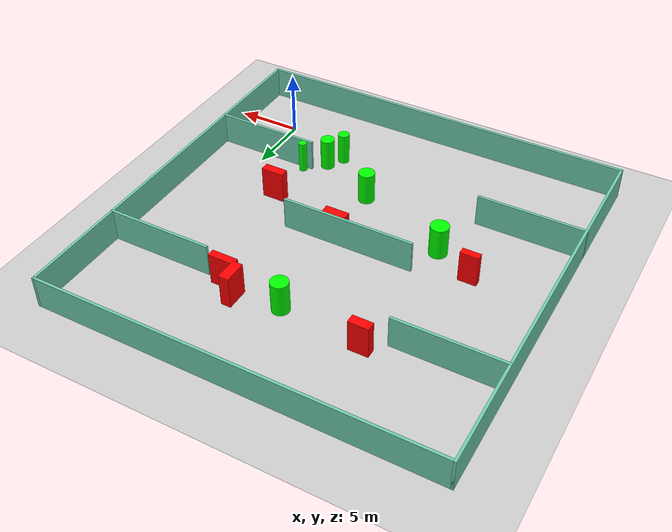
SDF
<sdf version="1.7">
 <world name="default">
  <light name="sun" type="directional">
   <pose>0 0 10 0 -0 0</pose>
   <diffuse>0.8 0.8 0.8 1</diffuse>
   <specular>0.2 0.2 0.2 1</specular>
   <attenuation>
    <range>1000</range>
    <constant>0.9</constant>
    <linear>0.01</linear>
    <quadratic>0.001</quadratic>
   </attenuation>
   <direction>-0.5 0.1 -0.9</direction>
   <spot><inner_angle>0</inner_angle><outer_angle>0</outer_angle><falloff>0</falloff></spot>
  </light>
  <model name="ground_plane">
   <static>1</static>
   <link name="link">
    <collision name="collision">
     <geometry><plane><normal>0 0 1</normal><size>100 100</size></plane></geometry>
     <surface>
      <contact><collide_bitmask>65535</collide_bitmask></contact>
      <friction><ode><mu>100</mu><mu2>50</mu2></ode></friction>
     </surface>
    </collision>
    <visual name="visual">
     <cast_shadows>0</cast_shadows>
     <geometry><plane><normal>0 0 1</normal><size>100 100</size></plane></geometry>
     <material>
      <script><uri>file://media/materials/scripts/gazebo.material</uri><name>Gazebo/Grey</name></script>
     </material>
    </visual>
   </link>
  </model>
  <gravity>0 0 -9.8</gravity>
  <magnetic_field>6e-06 2.3e-05 -4.2e-05</magnetic_field>
  <atmosphere type="adiabatic"/>
  <physics type="ode">
   <max_step_size>0.001</max_step_size>
   <real_time_factor>1</real_time_factor>
   <real_time_update_rate>1000</real_time_update_rate>
  </physics>
  <scene><ambient>0.4 0.4 0.4 1</ambient><background>0.7 0.7 0.7 1</background><shadows>1</shadows></scene>
  <spherical_coordinates>
   <surface_model>EARTH_WGS84</surface_model>
   <latitude_deg>0</latitude_deg>
   <longitude_deg>0</longitude_deg>
   <elevation>0</elevation>
   <heading_deg>0</heading_deg>
  </spherical_coordinates>
  <model name="my_base_walls">
   <link name="Wall_10">
    <collision name="Wall_10_Collision">
     <geometry><box><size>8.2 0.2 2.5</size></box></geometry>
     <pose>0 0 1.25 0 -0 0</pose>
    </collision>
    <visual name="Wall_10_Visual">
     <pose>0 0 1.25 0 -0 0</pose>
     <geometry><box><size>8.2 0.2 2.5</size></box></geometry>
     <material>
      <script><uri>file://media/materials/scripts/gazebo.material</uri><name>Gazebo/Grey</name></script>
      <ambient>0.435294 0.796078 0.67451 1</ambient>
     </material>
     <meta><layer>0</layer></meta>
    </visual>
    <pose>-11 -7 0 0 -0 0</pose>
   </link>
   <link name="Wall_12">
    <collision name="Wall_12_Collision">
     <geometry><box><size>8.2 0.2 2.5</size></box></geometry>
     <pose>0 0 1.25 0 -0 0</pose>
    </collision>
    <visual name="Wall_12_Visual">
     <pose>0 0 1.25 0 -0 0</pose>
     <geometry><box><size>8.2 0.2 2.5</size></box></geometry>
     <material>
      <script><uri>file://media/materials/scripts/gazebo.material</uri><name>Gazebo/Grey</name></script>
      <ambient>0.435294 0.796078 0.67451 1</ambient>
     </material>
     <meta><layer>0</layer></meta>
    </visual>
    <pose>-11 7 0 0 -0 0</pose>
   </link>
   <link name="Wall_14">
    <collision name="Wall_14_Collision">
     <geometry><box><size>8.2 0.2 2.5</size></box></geometry>
     <pose>0 0 1.25 0 -0 0</pose>
    </collision>
    <visual name="Wall_14_Visual">
     <pose>0 0 1.25 0 -0 0</pose>
     <geometry><box><size>8.2 0.2 2.5</size></box></geometry>
     <material>
      <script><uri>file://media/materials/scripts/gazebo.material</uri><name>Gazebo/Grey</name></script>
      <ambient>0.435294 0.796078 0.67451 1</ambient>
     </material>
     <meta><layer>0</layer></meta>
    </visual>
    <pose>11 7 0 0 -0 3.14159</pose>
   </link>
   <link name="Wall_16">
    <collision name="Wall_16_Collision">
     <geometry><box><size>10.2 0.2 2.5</size></box></geometry>
     <pose>0 0 1.25 0 -0 0</pose>
    </collision>
    <visual name="Wall_16_Visual">
     <pose>0 0 1.25 0 -0 0</pose>
     <geometry><box><size>10.2 0.2 2.5</size></box></geometry>
     <material>
      <script><uri>file://media/materials/scripts/gazebo.material</uri><name>Gazebo/Grey</name></script>
      <ambient>0.435294 0.796078 0.67451 1</ambient>
     </material>
     <meta><layer>0</layer></meta>
    </visual>
    <pose>0 0 0 0 -0 3.14159</pose>
   </link>
   <link name="Wall_2">
    <collision name="Wall_2_Collision">
     <geometry><box><size>30.2 0.2 2.5</size></box></geometry>
     <pose>0 0 1.25 0 -0 0</pose>
    </collision>
    <visual name="Wall_2_Visual">
     <pose>0 0 1.25 0 -0 0</pose>
     <geometry><box><size>30.2 0.2 2.5</size></box></geometry>
     <material>
      <script><uri>file://media/materials/scripts/gazebo.material</uri><name>Gazebo/Grey</name></script>
      <ambient>0.435294 0.796078 0.67451 1</ambient>
     </material>
     <meta><layer>0</layer></meta>
    </visual>
    <pose>0 -15 0 0 -0 3.14159</pose>
   </link>
   <link name="Wall_3">
    <collision name="Wall_3_Collision">
     <geometry><box><size>30.2 0.2 2.5</size></box></geometry>
     <pose>0 0 1.25 0 -0 0</pose>
    </collision>
    <visual name="Wall_3_Visual">
     <pose>0 0 1.25 0 -0 0</pose>
     <geometry><box><size>30.2 0.2 2.5</size></box></geometry>
     <material>
      <script><uri>file://media/materials/scripts/gazebo.material</uri><name>Gazebo/Grey</name></script>
      <ambient>0.435294 0.796078 0.67451 1</ambient>
     </material>
     <meta><layer>0</layer></meta>
    </visual>
    <pose>-15 0 0 0 -0 1.5708</pose>
   </link>
   <link name="Wall_4">
    <collision name="Wall_4_Collision">
     <geometry><box><size>30.2 0.2 2.5</size></box></geometry>
     <pose>0 0 1.25 0 -0 0</pose>
    </collision>
    <visual name="Wall_4_Visual">
     <pose>0 0 1.25 0 -0 0</pose>
     <geometry><box><size>30.2 0.2 2.5</size></box></geometry>
     <material>
      <script><uri>file://media/materials/scripts/gazebo.material</uri><name>Gazebo/Grey</name></script>
      <ambient>0.435294 0.796078 0.67451 1</ambient>
     </material>
     <meta><layer>0</layer></meta>
    </visual>
    <pose>0 15 0 0 -0 0</pose>
   </link>
   <link name="Wall_6">
    <collision name="Wall_6_Collision">
     <geometry><box><size>30.2 0.2 2.5</size></box></geometry>
     <pose>0 0 1.25 0 -0 0</pose>
    </collision>
    <visual name="Wall_6_Visual">
     <pose>0 0 1.25 0 -0 0</pose>
     <geometry><box><size>30.2 0.2 2.5</size></box></geometry>
     <material>
      <script><uri>file://media/materials/scripts/gazebo.material</uri><name>Gazebo/Grey</name></script>
      <ambient>0.435294 0.796078 0.67451 1</ambient>
     </material>
     <meta><layer>0</layer></meta>
    </visual>
    <pose>15 0 0 0 -0 1.5708</pose>
   </link>
   <link name="Wall_8">
    <collision name="Wall_8_Collision">
     <geometry><box><size>8.2 0.2 2.5</size></box></geometry>
     <pose>0 0 1.25 0 -0 0</pose>
    </collision>
    <visual name="Wall_8_Visual">
     <pose>0 0 1.25 0 -0 0</pose>
     <geometry><box><size>8.2 0.2 2.5</size></box></geometry>
     <material>
      <script><uri>file://media/materials/scripts/gazebo.material</uri><name>Gazebo/Grey</name></script>
      <ambient>0.435294 0.796078 0.67451 1</ambient>
     </material>
     <meta><layer>0</layer></meta>
    </visual>
    <pose>11 -7 0 0 -0 3.14159</pose>
   </link>
   <static>1</static>
   <pose>-11 11 0 0 -0 0</pose>
  </model>
  <model name="cylinder1">
   <static>1</static>
   <link name="link">
    <inertial>
     <mass>1</mass>
     <inertia><ixx>0.5</ixx><ixy>0</ixy><ixz>0</ixz><iyy>0.5</iyy><iyz>0</iyz><izz>1</izz></inertia>
    </inertial>
    <collision name="collision">
     <geometry><cylinder><radius>0.43854514092151786</radius><length>2.5</length></cylinder></geometry>
    </collision>
    <visual name="visual">
     <geometry><cylinder><radius>0.43854514092151786</radius><length>2.5</length></cylinder></geometry>
     <material>
      <ambient>0 1 0 1</ambient>
      <diffuse>0 1 0 1</diffuse>
      <specular>0.1 0.1 0.1 1</specular>
      <emissive>0 0 0 0</emissive>
     </material>
    </visual>
   </link>
   <pose>-5.6717661903232095 1.8438152615669656 1.25 0 0 0</pose>
  </model>
  <model name="cylinder2">
   <static>1</static>
   <link name="link">
    <inertial>
     <mass>1</mass>
     <inertia><ixx>0.5</ixx><ixy>0</ixy><ixz>0</ixz><iyy>0.5</iyy><iyz>0</iyz><izz>1</izz></inertia>
    </inertial>
    <collision name="collision">
     <geometry><cylinder><radius>0.5430347557222421</radius><length>2.5</length></cylinder></geometry>
    </collision>
    <visual name="visual">
     <geometry><cylinder><radius>0.5430347557222421</radius><length>2.5</length></cylinder></geometry>
     <material>
      <ambient>0 1 0 1</ambient>
      <diffuse>0 1 0 1</diffuse>
      <specular>0.1 0.1 0.1 1</specular>
      <emissive>0 0 0 0</emissive>
     </material>
    </visual>
   </link>
   <pose>-4.91540556629959 3.058834877148316 1.25 0 0 0</pose>
  </model>
  <model name="cylinder3">
   <static>1</static>
   <link name="link">
    <inertial>
     <mass>1</mass>
     <inertia><ixx>0.5</ixx><ixy>0</ixy><ixz>0</ixz><iyy>0.5</iyy><iyz>0</iyz><izz>1</izz></inertia>
    </inertial>
    <collision name="collision">
     <geometry><cylinder><radius>0.6957913519023866</radius><length>2.5</length></cylinder></geometry>
    </collision>
    <visual name="visual">
     <geometry><cylinder><radius>0.6957913519023866</radius><length>2.5</length></cylinder></geometry>
     <material>
      <ambient>0 1 0 1</ambient>
      <diffuse>0 1 0 1</diffuse>
      <specular>0.1 0.1 0.1 1</specular>
      <emissive>0 0 0 0</emissive>
     </material>
    </visual>
   </link>
   <pose>-16.920184485905672 8.384526963897148 1.25 0 0 0</pose>
  </model>
  <model name="cylinder4">
   <static>1</static>
   <link name="link">
    <inertial>
     <mass>1</mass>
     <inertia><ixx>0.5</ixx><ixy>0</ixy><ixz>0</ixz><iyy>0.5</iyy><iyz>0</iyz><izz>1</izz></inertia>
    </inertial>
    <collision name="collision">
     <geometry><cylinder><radius>0.6191271852218474</radius><length>2.5</length></cylinder></geometry>
    </collision>
    <visual name="visual">
     <geometry><cylinder><radius>0.6191271852218474</radius><length>2.5</length></cylinder></geometry>
     <material>
      <ambient>0 1 0 1</ambient>
      <diffuse>0 1 0 1</diffuse>
      <specular>0.1 0.1 0.1 1</specular>
      <emissive>0 0 0 0</emissive>
     </material>
    </visual>
   </link>
   <pose>-9.592127152797076 5.396879618581778 1.25 0 0 0</pose>
  </model>
  <model name="cylinder5">
   <static>1</static>
   <link name="link">
    <inertial>
     <mass>1</mass>
     <inertia><ixx>0.5</ixx><ixy>0</ixy><ixz>0</ixz><iyy>0.5</iyy><iyz>0</iyz><izz>1</izz></inertia>
    </inertial>
    <collision name="collision">
     <geometry><cylinder><radius>0.6612225174203571</radius><length>2.5</length></cylinder></geometry>
    </collision>
    <visual name="visual">
     <geometry><cylinder><radius>0.6612225174203571</radius><length>2.5</length></cylinder></geometry>
     <material>
      <ambient>0 1 0 1</ambient>
      <diffuse>0 1 0 1</diffuse>
      <specular>0.1 0.1 0.1 1</specular>
      <emissive>0 0 0 0</emissive>
     </material>
    </visual>
   </link>
   <pose>-10.196474292540463 18.585213126528824 1.25 0 0 0</pose>
  </model>
  <model name="cylinder6">
   <static>1</static>
   <link name="link">
    <inertial>
     <mass>1</mass>
     <inertia><ixx>0.5</ixx><ixy>0</ixy><ixz>0</ixz><iyy>0.5</iyy><iyz>0</iyz><izz>1</izz></inertia>
    </inertial>
    <collision name="collision">
     <geometry><cylinder><radius>0.31281825989241635</radius><length>2.5</length></cylinder></geometry>
    </collision>
    <visual name="visual">
     <geometry><cylinder><radius>0.31281825989241635</radius><length>2.5</length></cylinder></geometry>
     <material>
      <ambient>0 1 0 1</ambient>
      <diffuse>0 1 0 1</diffuse>
      <specular>0.1 0.1 0.1 1</specular>
      <emissive>0 0 0 0</emissive>
     </material>
    </visual>
   </link>
   <pose>-3.473091983656829 4.403813526415843 1.25 0 0 0</pose>
  </model>
  <model name="box1">
   <static>1</static>
   <link name="link">
    <inertial>
     <mass>1</mass>
     <inertia><ixx>0.083</ixx><ixy>0</ixy><ixz>0</ixz><iyy>0.083</iyy><iyz>0</iyz><izz>0.083</izz></inertia>
    </inertial>
    <collision name="collision">
     <geometry><box><size>1.8020511678836957 0.6747826811868392 2.5</size></box></geometry>
    </collision>
    <visual name="visual">
     <geometry><box><size>1.8020511678836957 0.6747826811868392 2.5</size></box></geometry>
     <material>
      <ambient>1 0 0 1</ambient>
      <diffuse>1 0 0 1</diffuse>
      <specular>0.1 0.1 0.1 1</specular>
      <emissive>0 0 0 0</emissive>
     </material>
    </visual>
    <sensor name="my_contact" type="contact">
     <contact><collision>box_collision</collision><topic>__default_topic__</topic></contact>
    </sensor>
   </link>
   <pose>-9.8454291104626 10.56570354316237 1.25 0 0 0</pose>
  </model>
  <model name="box2">
   <static>1</static>
   <link name="link">
    <inertial>
     <mass>1</mass>
     <inertia><ixx>0.083</ixx><ixy>0</ixy><ixz>0</ixz><iyy>0.083</iyy><iyz>0</iyz><izz>0.083</izz></inertia>
    </inertial>
    <collision name="collision">
     <geometry><box><size>1.5287341815323054 0.6947070455978671 2.5</size></box></geometry>
    </collision>
    <visual name="visual">
     <geometry><box><size>1.5287341815323054 0.6947070455978671 2.5</size></box></geometry>
     <material>
      <ambient>1 0 0 1</ambient>
      <diffuse>1 0 0 1</diffuse>
      <specular>0.1 0.1 0.1 1</specular>
      <emissive>0 0 0 0</emissive>
     </material>
    </visual>
    <sensor name="my_contact" type="contact">
     <contact><collision>box_collision</collision><topic>__default_topic__</topic></contact>
    </sensor>
   </link>
   <pose>-16.559344374174138 19.285820223906672 1.25 0 0 0</pose>
  </model>
  <model name="box3">
   <static>1</static>
   <link name="link">
    <inertial>
     <mass>1</mass>
     <inertia><ixx>0.083</ixx><ixy>0</ixy><ixz>0</ixz><iyy>0.083</iyy><iyz>0</iyz><izz>0.083</izz></inertia>
    </inertial>
    <collision name="collision">
     <geometry><box><size>1.390204762617425 0.5312915944050027 2.5</size></box></geometry>
    </collision>
    <visual name="visual">
     <geometry><box><size>1.390204762617425 0.5312915944050027 2.5</size></box></geometry>
     <material>
      <ambient>1 0 0 1</ambient>
      <diffuse>1 0 0 1</diffuse>
      <specular>0.1 0.1 0.1 1</specular>
      <emissive>0 0 0 0</emissive>
     </material>
    </visual>
    <sensor name="my_contact" type="contact">
     <contact><collision>box_collision</collision><topic>__default_topic__</topic></contact>
    </sensor>
   </link>
   <pose>-19.946616405175376 10.017085758598789 1.25 0 0 0</pose>
  </model>
  <model name="box4">
   <static>1</static>
   <link name="link">
    <inertial>
     <mass>1</mass>
     <inertia><ixx>0.083</ixx><ixy>0</ixy><ixz>0</ixz><iyy>0.083</iyy><iyz>0</iyz><izz>0.083</izz></inertia>
    </inertial>
    <collision name="collision">
     <geometry><box><size>1.9988753535518131 0.580307946709043 2.5</size></box></geometry>
    </collision>
    <visual name="visual">
     <geometry><box><size>1.9988753535518131 0.580307946709043 2.5</size></box></geometry>
     <material>
      <ambient>1 0 0 1</ambient>
      <diffuse>1 0 0 1</diffuse>
      <specular>0.1 0.1 0.1 1</specular>
      <emissive>0 0 0 0</emissive>
     </material>
    </visual>
    <sensor name="my_contact" type="contact">
     <contact><collision>box_collision</collision><topic>__default_topic__</topic></contact>
    </sensor>
   </link>
   <pose>-5.6379636582816754 18.361406692092814 1.25 0 0 0</pose>
  </model>
  <model name="box5">
   <static>1</static>
   <link name="link">
    <inertial>
     <mass>1</mass>
     <inertia><ixx>0.083</ixx><ixy>0</ixy><ixz>0</ixz><iyy>0.083</iyy><iyz>0</iyz><izz>0.083</izz></inertia>
    </inertial>
    <collision name="collision">
     <geometry><box><size>1.760792713868197 0.6718865541660508 2.5</size></box></geometry>
    </collision>
    <visual name="visual">
     <geometry><box><size>1.760792713868197 0.6718865541660508 2.5</size></box></geometry>
     <material>
      <ambient>1 0 0 1</ambient>
      <diffuse>1 0 0 1</diffuse>
      <specular>0.1 0.1 0.1 1</specular>
      <emissive>0 0 0 0</emissive>
     </material>
    </visual>
    <sensor name="my_contact" type="contact">
     <contact><collision>box_collision</collision><topic>__default_topic__</topic></contact>
    </sensor>
   </link>
   <pose>-3.4034301704082175 8.373577563852942 1.25 0 0 0</pose>
  </model>
  <model name="box6">
   <static>1</static>
   <link name="link">
    <inertial>
     <mass>1</mass>
     <inertia><ixx>0.083</ixx><ixy>0</ixy><ixz>0</ixz><iyy>0.083</iyy><iyz>0</iyz><izz>0.083</izz></inertia>
    </inertial>
    <collision name="collision">
     <geometry><box><size>0.7655862625541632 1.727084392973882 2.5</size></box></geometry>
    </collision>
    <visual name="visual">
     <geometry><box><size>0.7655862625541632 1.727084392973882 2.5</size></box></geometry>
     <material>
      <ambient>1 0 0 1</ambient>
      <diffuse>1 0 0 1</diffuse>
      <specular>0.1 0.1 0.1 1</specular>
      <emissive>0 0 0 0</emissive>
     </material>
    </visual>
    <sensor name="my_contact" type="contact">
     <contact><collision>box_collision</collision><topic>__default_topic__</topic></contact>
    </sensor>
   </link>
   <pose>-6.820392615830029 19.211314959500637 1.25 0 0 0</pose>
  </model>
 </world>
</sdf>
